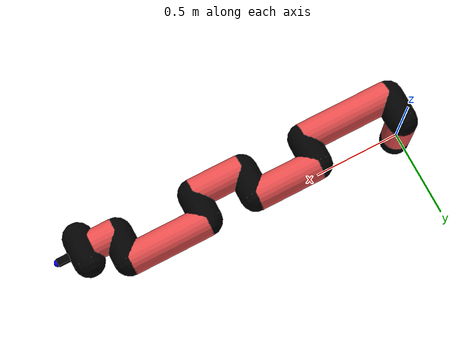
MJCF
<mujoco model="manipulator">
		<compiler angle="degree" coordinate="local" inertiafromgeom="auto" meshdir="meshes/"/>
		<option gravity="0 0 0" integrator="RK4" iterations="30" timestep="0.01"/>

		<default>
		<joint armature="1" limited="true" stiffness="10" damping="15" frictionloss="5.0"/>
		<geom conaffinity="1" condim="3" contype="1" friction=".5 .1 .1" margin="0.002"/>
		<motor ctrllimited="true"/>
		<position ctrllimited="true"/>
		</default>

		<asset>
		<texture builtin="gradient" height="100" rgb1="1.0 1.0 1.0" rgb2="1.0 1.0 1.0" type="skybox" width="100"/>
		<texture builtin="flat" height="32" name="arm_tex" rgb1="0.9 0.3 0.3" type="2d" width="32"/>
		<texture builtin="flat" height="32" name="gripper_tex" rgb1="0.0 0.0 0.0" type="cube" width="32"/>

		<material name="arm_mat" shininess="0.1" specular="0.1" texture="arm_tex"/>
		<material name="gripper_mat" shininess="1" specular="1" texture="gripper_tex"/>
		</asset>

		<worldbody>
		<light cutoff="45" diffuse=".8 .8 .8" dir="0 0.16 -1" directional="false" name="light" pos="0 -2.0 8.0" specular="0.3 0.3 0.3"/>

		<body name="base_link" pos="0 0 -0.1">
		<geom fromto="0 0 0 0 0 0.1" material="arm_mat" name="base_link" rgba="0.0 0.0 0.0 1" size="0.085" type="cylinder"/>
		</body>

		<body name="l1" pos="0 0 0">
<geom fromto="0 0 0 0 0 0.26" material="arm_mat" name="l1" rgba="0.9 0.3 0.3 1" size="0.085" type="cylinder"/>
<geom fromto="0 0 0.26 0 -0.16 0.26" material="arm_mat" name="l1_ex" rgba="0.0 0.0 0.0 1" size="0.085" type="capsule"/>
<joint axis="0 0 1" name="j1" pos="0 0 0" range="-90 90" damping="34.05" frictionloss="6.8"/>

<body name="l2" pos="0 -0.16 0.26">
<geom fromto="0 0 0 0.52 0 0" material="arm_mat" name="l2" rgba="0.9 0.3 0.3 1" size="0.085" type="cylinder"/>
<geom fromto="0.52 0 0 0.52 0.16 0" material="arm_mat" name="l2_ex" rgba="0.0 0.0 0.0 1" size="0.085" type="capsule"/>
<joint axis="0.0 1.0 0.0" name="j2" pos="0 0 0" range="-90 60" damping="30.03" frictionloss="11.79"/>

<body name="l3" pos="0.52 0.16 0">
<geom fromto="0 0 0 0.37 0 0" material="arm_mat" name="l3" rgba="0.9 0.3 0.3 1" size="0.085" type="cylinder"/>
<geom fromto="0.37 0 0 0.37 -0.16 0" material="arm_mat" name="l3_ex" rgba="0.0 0.0 0.0 1" size="0.085" type="capsule"/>
<joint axis="0.0 1.0 0.0" name="j3" pos="0 0 0" range="-30 60" damping="38.33" frictionloss="6.86"/>

<body name="l4" pos="0.37 -0.16 0">
<geom fromto="0 0 0 0.29 0 0" material="arm_mat" name="l4" rgba="0.9 0.3 0.3 1" size="0.085" type="cylinder"/>
<geom fromto="0.29 0 0 0.29 0.16 0" material="arm_mat" name="l4_ex" rgba="0.0 0.0 0.0 1" size="0.085" type="capsule"/>
<joint axis="0.0 1.0 0.0" name="j4" pos="0 0 0" range="-30 60" damping="20.1" frictionloss="8.95"/>

<body name="l5" pos="0.29 0.16 0">
<geom fromto="0 0 0 0.45 0 0" material="arm_mat" name="l5" rgba="0.9 0.3 0.3 1" size="0.085" type="cylinder"/>
<geom fromto="0.45 0 0 0.45 -0.16 0" material="arm_mat" name="l5_ex" rgba="0.0 0.0 0.0 1" size="0.085" type="capsule"/>
<joint axis="0.0 1.0 0.0" name="j5" pos="0 0 0" range="-30 60" damping="45.04" frictionloss="7.3"/>

<body name="l6" pos="0.45 -0.16 0">
<geom fromto="0 0 0 0.14 0 0" material="arm_mat" name="l6" rgba="0.9 0.3 0.3 1" size="0.085" type="cylinder"/>
<joint axis="0.0 1.0 0.0" name="j6" pos="0 0 0" range="-30 60" damping="14.58" frictionloss="10.14"/>

<body name="gripper" pos="0.14 0 0">
<geom fromto="0.05 -0.07 0 0.05 0.07 0" material="gripper_mat" name="gripper" rgba="0.0 0.0 0.0 1" size="0.085" type="capsule"/><joint axis="1 0 0" name="j7" pos="0 0 0" range="-90 90" damping="15" frictionloss="5.0"/><body name="finger" pos="0.1 0 0">
<geom fromto="0 0.0 0 0.1 0.0 0" material="gripper_mat" name="finger" rgba="0.0 0.0 0.0 1" size="0.020 0.06 0.06" type="box"/>
</body>
<site name="current" pos="0.2 0. 0.0" rgba="0. 0. 1.0 1" size="0.02" type="sphere"/>
</body>
</body>
</body>
</body>
</body>
</body>
</body>
</worldbody>
<actuator>
<motor ctrllimited="true" ctrlrange="-1.0 1.0" joint="j1" gear="32.72"/>
<motor ctrllimited="true" ctrlrange="-1.0 1.0" joint="j2" gear="74.08"/>
<motor ctrllimited="true" ctrlrange="-1.0 1.0" joint="j3" gear="79.53"/>
<motor ctrllimited="true" ctrlrange="-1.0 1.0" joint="j4" gear="85.8"/>
<motor ctrllimited="true" ctrlrange="-1.0 1.0" joint="j5" gear="94.06"/>
<motor ctrllimited="true" ctrlrange="-1.0 1.0" joint="j6" gear="116.23"/>
<motor ctrllimited="true" ctrlrange="-1.0 1.0" joint="j7" gear="80"/>
</actuator>
</mujoco>
